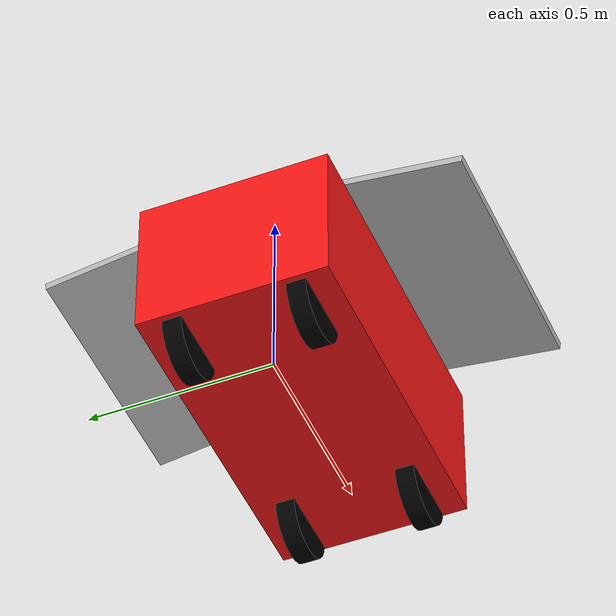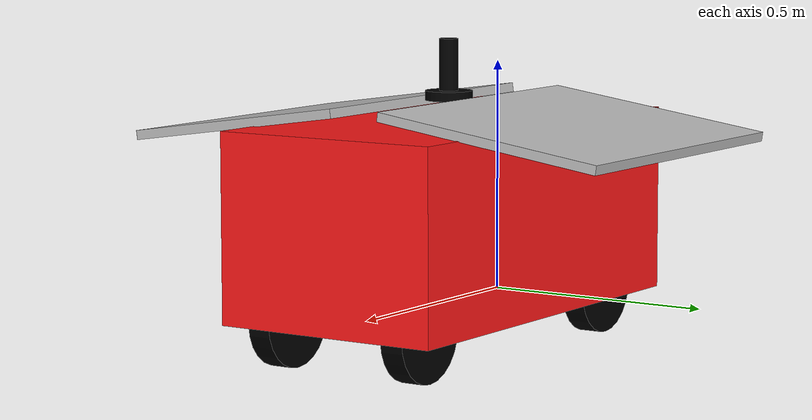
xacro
<?xml version="1.0"?>
<robot xmlns:xacro="http://www.ros.org/wiki/xacro" >

    <xacro:include filename="inertial_macros.xacro"/>

    <xacro:property name="chassis_length" value="0.92"/>
    <xacro:property name="chassis_width" value="0.505"/>
    <xacro:property name="chassis_height" value="0.40"/>
    <xacro:property name="wheel_radius" value="0.1016"/>
    <xacro:property name="wheel_thickness" value="0.0508"/>
    <xacro:property name="wheel_mass" value="0.6"/>
    <xacro:property name="wheel_offset_x" value="0.265"/>
    <xacro:property name="wheel_offset_y" value="0.1625"/>
    <xacro:property name="wheel_offset_z" value="0.01"/>
    <xacro:property name="caster_wheel_radius" value="0.1016"/>
    <xacro:property name="caster_wheel_mass" value="0.6"/>
    <xacro:property name="caster_wheel_offset_x" value="0.075"/>
    <xacro:property name="caster_wheel_offset_z" value="${wheel_offset_z - wheel_radius + caster_wheel_radius}"/>

    <!-- SOLAR PANEL PROPERTIES -->
    <xacro:property name="solar_length" value="0.7"/>
    <xacro:property name="solar_width" value="0.51"/>
    <xacro:property name="solar_thickness" value="0.02"/>
    <xacro:property name="solar_mass" value="1.0"/>
    <xacro:property name="solar_angle" value="0.145"/>

    <material name="white">
        <color rgba="1 1 1 1" />
    </material>

    <material name="orange">
        <color rgba="1 0.3 0.1 1"/>
    </material>

    <material name="blue">
        <color rgba="0.2 0.2 1 1"/>
    </material>

    <material name="black">
        <color rgba="0 0 0 1"/>
    </material>

    <material name="red">
        <color rgba="1.0 0.094 0.094 1"/>
    </material>

    <material name="silver">
        <color rgba="0.753 0.753 0.753 1"/>
    </material>

    <!-- BASE LINK -->

    <link name="base_link">

    </link>

    <!-- BASE_FOOTPRINT LINK -->

    <joint name="base_footprint_joint" type="fixed">
        <parent link="base_link"/>
        <child link="base_footprint"/>
        <origin xyz="0 0 ${-wheel_radius}" rpy="0 0 0"/>
    </joint>

    <link name="base_footprint">
    </link>

    <!-- CHASSIS LINK -->

    <joint name="chassis_joint" type="fixed">
        <parent link="base_link"/>
        <child link="chassis"/>
        <origin xyz="${-wheel_offset_x} 0 ${-wheel_offset_z}"/>
    </joint>

    <link name="chassis">
        <visual>
            <origin xyz="${chassis_length/2} 0 ${chassis_height/2}"/>
            <geometry>
                <box size="${chassis_length} ${chassis_width} ${chassis_height}"/>
            </geometry>
            <material name="red"/>
        </visual>
        <collision>
            <origin xyz="${chassis_length/2} 0 ${chassis_height/2}"/>
            <geometry>
                <box size="${chassis_length} ${chassis_width} ${chassis_height}"/>
            </geometry>
        </collision>
        <xacro:inertial_box mass="0.05" x="${chassis_length}" y="${chassis_width}" z="${chassis_height}">
            <origin xyz="${chassis_length/2} 0 ${chassis_height/2}" rpy="0 0 0"/>
        </xacro:inertial_box>
    </link>

    <gazebo reference="chassis">
        <material>Gazebo/Red</material>
    </gazebo>

    <!-- LEFT WHEEL LINK -->

    <joint name="left_wheel_joint" type="continuous">
        <parent link="base_link"/>
        <child link="left_wheel"/>
        <origin xyz="0.55 ${wheel_offset_y} 0" rpy="-${pi/2} 0 0" />
        <axis xyz="0 0 1"/>
    </joint>

    <link name="left_wheel">
        <visual>
            <geometry>
                <cylinder radius="${wheel_radius}" length="${wheel_thickness}"/>
            </geometry>
            <material name="black"/>
        </visual>
        <collision>
            <geometry>
                <sphere radius="${wheel_radius}"/>
            </geometry>
        </collision>
        <xacro:inertial_cylinder mass="${wheel_mass}" length="${wheel_thickness}" radius="${wheel_radius}">
            <origin xyz="0 0 0" rpy="0 0 0"/>
        </xacro:inertial_cylinder>
    </link>

    <gazebo reference="left_wheel">
        <material>Gazebo/Black</material>
    </gazebo>

    <!-- RIGHT WHEEL LINK -->

    <joint name="right_wheel_joint" type="continuous">
        <parent link="base_link"/>
        <child link="right_wheel"/>
        <origin xyz="0.55 ${-wheel_offset_y} 0" rpy="${pi/2} 0 0" />
        <axis xyz="0 0 -1"/>
    </joint>

    <link name="right_wheel">
        <visual>
            <geometry>
                <cylinder radius="${wheel_radius}" length="${wheel_thickness}"/>
            </geometry>
            <material name="black"/>
        </visual>
        <collision>
            <geometry>
                <sphere radius="${wheel_radius}"/>
            </geometry>
        </collision>
        <xacro:inertial_cylinder mass="${wheel_mass}" length="${wheel_thickness}" radius="${wheel_radius}">
            <origin xyz="0 0 0" rpy="0 0 0"/>
        </xacro:inertial_cylinder>
    </link>

    <gazebo reference="right_wheel">
        <material>Gazebo/Black</material>
    </gazebo>

    <!-- REAR LEFT WHEEL LINK -->

    <joint name="rear_left_wheel_joint" type="fixed">
        <parent link="base_link"/>
        <child link="rear_left_wheel"/>
        <origin xyz="${-2 * caster_wheel_offset_x} ${wheel_offset_y} 0" rpy="-${pi/2} 0 0"/>
        <axis xyz="0 0 1"/>
    </joint>

    <link name="rear_left_wheel">
        <visual>
            <geometry>
                <cylinder radius="${wheel_radius}" length="${wheel_thickness}"/>
            </geometry>
            <material name="black"/>
        </visual>
        <collision>
            <geometry>
                <sphere radius="${wheel_radius}"/>
            </geometry>
        </collision>
        <xacro:inertial_cylinder mass="${wheel_mass}" length="${wheel_thickness}" radius="${wheel_radius}">
            <origin xyz="0 0 0" rpy="0 0 0"/>
        </xacro:inertial_cylinder>
    </link>

    <gazebo reference="rear_left_wheel">
        <material>Gazebo/Black</material>
        <mu1>0.05</mu1>
        <mu2>0.05</mu2>
        <slip1>0.8</slip1>
        <slip2>0.8</slip2>
    </gazebo>

    <!-- REAR RIGHT WHEEL LINK -->

    <joint name="rear_right_wheel_joint" type="fixed">
        <parent link="base_link"/>
        <child link="rear_right_wheel"/>
        <origin xyz="${-2 * caster_wheel_offset_x} ${-wheel_offset_y} 0" rpy="${pi/2} 0 0"/>
        <axis xyz="0 0 -1"/>
    </joint>

    <link name="rear_right_wheel">
        <visual>
            <geometry>
                <cylinder radius="${wheel_radius}" length="${wheel_thickness}"/>
            </geometry>
            <material name="black"/>
        </visual>
        <collision>
            <geometry>
                <sphere radius="${wheel_radius}"/>
            </geometry>
        </collision>
        <xacro:inertial_cylinder mass="${wheel_mass}" length="${wheel_thickness}" radius="${wheel_radius}">
            <origin xyz="0 0 0" rpy="0 0 0"/>
        </xacro:inertial_cylinder>
    </link>

    <gazebo reference="rear_right_wheel">
        <material>Gazebo/Black</material>
        <mu1>0.05</mu1>
        <mu2>0.05</mu2>
        <slip1>0.8</slip1>
        <slip2>0.8</slip2>
    </gazebo>

    <!-- SOLAR MAST -->

    <joint name="solar_mast_joint" type="fixed">
        <parent link="chassis"/>
        <child link="solar_mast"/>
        <origin xyz="${chassis_length/2} 0 ${chassis_height}"/>
    </joint>

    <link name="solar_mast">
        <visual>
            <geometry><cylinder radius="0.02" length="0.17"/></geometry>
            <origin xyz="0 0 0.085"/>
            <material name="black"/>
        </visual>
        <collision>
            <geometry><cylinder radius="0.02" length="0.17"/></geometry>
            <origin xyz="0 0 0.085"/>
        </collision>
        <xacro:inertial_cylinder mass="0.5" length="0.17" radius="0.02">
            <origin xyz="0 0 0.085"/>
        </xacro:inertial_cylinder>
    </link>

    <!-- SOLAR HUB -->

    <joint name="solar_hub_joint" type="fixed">
        <parent link="solar_mast"/>
        <child link="solar_hub"/>
        <origin xyz="0 0 0.05"/>
    </joint>

    <link name="solar_hub">
        <visual>
            <geometry><cylinder radius="0.05" length="0.02"/></geometry>
            <material name="black"/>
        </visual>
    </link>

    <!-- SOLAR PANEL LEFT -->

    <joint name="solar_left_joint" type="fixed">
        <parent link="solar_hub"/>
        <child link="solar_panel_left"/>
        <origin xyz="${-solar_length/2} 0.31 -0.05" rpy="${-solar_angle} 0 0"/>
    </joint>

    <link name="solar_panel_left">
        <visual>
            <origin xyz="${solar_length/2} 0 0"/>
            <geometry>
                <box size="${solar_length} ${solar_width} ${solar_thickness}"/>
            </geometry>
            <material name="silver"/>
        </visual>
        <collision>
            <origin xyz="${solar_length/2} 0 0"/>
            <geometry>
                <box size="${solar_length} ${solar_width} ${solar_thickness}"/>
            </geometry>
        </collision>
        <xacro:inertial_box mass="${solar_mass}"
            x="${solar_length}" y="${solar_width}" z="${solar_thickness}">
            <origin xyz="${solar_length/2} 0 0"/>
        </xacro:inertial_box>
    </link>

    <gazebo reference="solar_panel_left">
        <material>Gazebo/Silver</material>
    </gazebo>

    <!-- SOLAR PANEL RIGHT -->

    <joint name="solar_right_joint" type="fixed">
        <parent link="solar_hub"/>
        <child link="solar_panel_right"/>
        <origin xyz="${-solar_length/2} -0.31 -0.05" rpy="${solar_angle} 0 0"/>
    </joint>

    <link name="solar_panel_right">
        <visual>
            <origin xyz="${solar_length/2} 0 0"/>
            <geometry>
                <box size="${solar_length} ${solar_width} ${solar_thickness}"/>
            </geometry>
            <material name="silver"/>
        </visual>
        <collision>
            <origin xyz="${solar_length/2} 0 0"/>
            <geometry>
                <box size="${solar_length} ${solar_width} ${solar_thickness}"/>
            </geometry>
        </collision>
        <xacro:inertial_box mass="${solar_mass}"
            x="${solar_length}" y="${solar_width}" z="${solar_thickness}">
            <origin xyz="${solar_length/2} 0 0"/>
        </xacro:inertial_box>
    </link>

    <gazebo reference="solar_panel_right">
        <material>Gazebo/Silver</material>
    </gazebo>

</robot>
